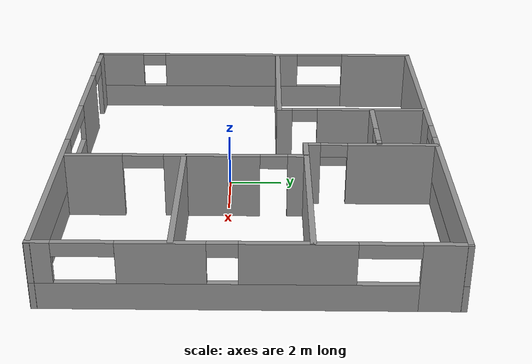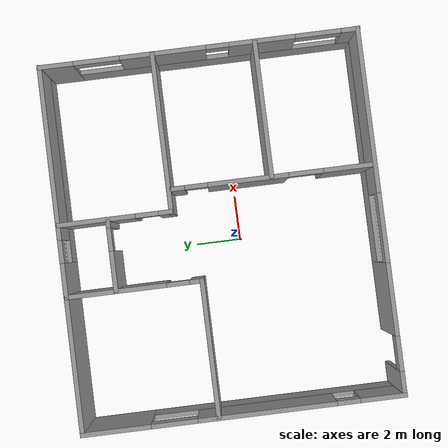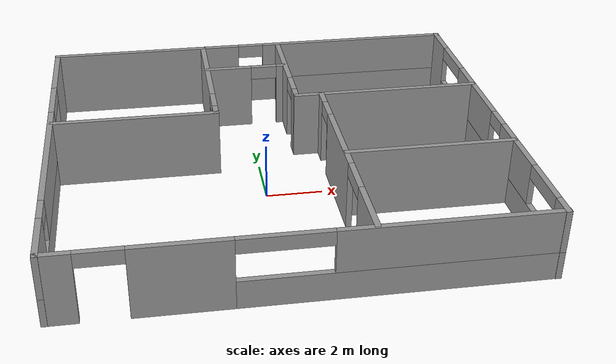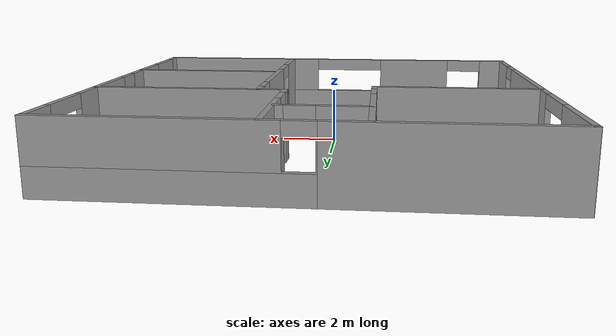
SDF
<?xml version='1.0'?>
<sdf version='1.4'>
  <model name='house_6'>
    <link name='Wall_0'>
      <pose>-1.5683 4.82163 0 0 0 -1.5708</pose>
      <visual name='Wall_0_Visual_0'>
        <pose>-0.80827 0 1.25 0 -0 0</pose>
        <geometry>
          <box>
            <size>4.38346 0.2 2.5</size>
          </box>
        </geometry>
        <material>
          <script>
            <uri>file://media/materials/scripts/gazebo.material</uri>
            <name>Gazebo/Grey</name>
          </script>
        </material>
      </visual>
      <collision name='Wall_0_Collision_0'>
        <geometry>
          <box>
            <size>4.38346 0.2 2.5</size>
          </box>
        </geometry>
        <pose>-0.80827 0 1.25 0 -0 0</pose>
      </collision>
      <visual name='Wall_0_Visual_1'>
        <pose>2.69173 0 1.25 0 -0 0</pose>
        <geometry>
          <box>
            <size>0.61654 0.2 2.5</size>
          </box>
        </geometry>
        <material>
          <script>
            <uri>file://media/materials/scripts/gazebo.material</uri>
            <name>Gazebo/Grey</name>
          </script>
        </material>
      </visual>
      <collision name='Wall_0_Collision_1'>
        <geometry>
          <box>
            <size>0.61654 0.2 2.5</size>
          </box>
        </geometry>
        <pose>2.69173 0 1.25 0 -0 0</pose>
      </collision>
      <visual name='Wall_0_Visual_2'>
        <pose>1.88346 0 2.25 0 -0 0</pose>
        <geometry>
          <box>
            <size>1 0.2 0.5</size>
          </box>
        </geometry>
        <material>
          <script>
            <uri>file://media/materials/scripts/gazebo.material</uri>
            <name>Gazebo/Grey</name>
          </script>
        </material>
      </visual>
      <collision name='Wall_0_Collision_2'>
        <geometry>
          <box>
            <size>1 0.2 0.5</size>
          </box>
        </geometry>
        <pose>1.88346 0 2.25 0 -0 0</pose>
      </collision>
    </link>
    <link name='Wall_10'>
      <pose>0.47408 -6.05021 0 0 -0 0</pose>
      <visual name='Wall_10_Visual_0'>
        <pose>-7.44687 0 1.25 0 -0 0</pose>
        <geometry>
          <box>
            <size>1.10625 0.2 2.5</size>
          </box>
        </geometry>
        <material>
          <script>
            <uri>file://media/materials/scripts/gazebo.material</uri>
            <name>Gazebo/Grey</name>
          </script>
        </material>
      </visual>
      <collision name='Wall_10_Collision_0'>
        <geometry>
          <box>
            <size>1.10625 0.2 2.5</size>
          </box>
        </geometry>
        <pose>-7.44687 0 1.25 0 -0 0</pose>
      </collision>
      <visual name='Wall_10_Visual_1'>
        <pose>-3.8207 0 1.25 0 -0 0</pose>
        <geometry>
          <box>
            <size>3.14608 0.2 2.5</size>
          </box>
        </geometry>
        <material>
          <script>
            <uri>file://media/materials/scripts/gazebo.material</uri>
            <name>Gazebo/Grey</name>
          </script>
        </material>
      </visual>
      <collision name='Wall_10_Collision_1'>
        <geometry>
          <box>
            <size>3.14608 0.2 2.5</size>
          </box>
        </geometry>
        <pose>-3.8207 0 1.25 0 -0 0</pose>
      </collision>
      <visual name='Wall_10_Visual_2'>
        <pose>2.87617 0 0.5 0 -0 0</pose>
        <geometry>
          <box>
            <size>10.2477 0.2 1</size>
          </box>
        </geometry>
        <material>
          <script>
            <uri>file://media/materials/scripts/gazebo.material</uri>
            <name>Gazebo/Grey</name>
          </script>
        </material>
      </visual>
      <collision name='Wall_10_Collision_2'>
        <geometry>
          <box>
            <size>10.2477 0.2 1</size>
          </box>
        </geometry>
        <pose>2.87617 0 0.5 0 -0 0</pose>
      </collision>
      <visual name='Wall_10_Visual_3'>
        <pose>4.37617 0 1.75 0 -0 0</pose>
        <geometry>
          <box>
            <size>7.24766 0.2 1.5</size>
          </box>
        </geometry>
        <material>
          <script>
            <uri>file://media/materials/scripts/gazebo.material</uri>
            <name>Gazebo/Grey</name>
          </script>
        </material>
      </visual>
      <collision name='Wall_10_Collision_3'>
        <geometry>
          <box>
            <size>7.24766 0.2 1.5</size>
          </box>
        </geometry>
        <pose>4.37617 0 1.75 0 -0 0</pose>
      </collision>
      <visual name='Wall_10_Visual_4'>
        <pose>-6.14375 0 2.25 0 -0 0</pose>
        <geometry>
          <box>
            <size>1.5 0.2 0.5</size>
          </box>
        </geometry>
        <material>
          <script>
            <uri>file://media/materials/scripts/gazebo.material</uri>
            <name>Gazebo/Grey</name>
          </script>
        </material>
      </visual>
      <collision name='Wall_10_Collision_4'>
        <geometry>
          <box>
            <size>1.5 0.2 0.5</size>
          </box>
        </geometry>
        <pose>-6.14375 0 2.25 0 -0 0</pose>
      </collision>
      <visual name='Wall_10_Visual_5'>
        <pose>-0.747664 0 2.25 0 -0 0</pose>
        <geometry>
          <box>
            <size>3 0.2 0.5</size>
          </box>
        </geometry>
        <material>
          <script>
            <uri>file://media/materials/scripts/gazebo.material</uri>
            <name>Gazebo/Grey</name>
          </script>
        </material>
      </visual>
      <collision name='Wall_10_Collision_5'>
        <geometry>
          <box>
            <size>3 0.2 0.5</size>
          </box>
        </geometry>
        <pose>-0.747664 0 2.25 0 -0 0</pose>
      </collision>
    </link>
    <link name='Wall_12'>
      <pose>0.474023 7.74505 0 0 -0 0</pose>
      <visual name='Wall_12_Visual_0'>
        <pose>-4.28683 0 1.25 0 -0 0</pose>
        <geometry>
          <box>
            <size>7.42633 0.2 2.5</size>
          </box>
        </geometry>
        <material>
          <script>
            <uri>file://media/materials/scripts/gazebo.material</uri>
            <name>Gazebo/Grey</name>
          </script>
        </material>
      </visual>
      <collision name='Wall_12_Collision_0'>
        <geometry>
          <box>
            <size>7.42633 0.2 2.5</size>
          </box>
        </geometry>
        <pose>-4.28683 0 1.25 0 -0 0</pose>
      </collision>
      <visual name='Wall_12_Visual_1'>
        <pose>3.71317 0 0.5 0 -0 0</pose>
        <geometry>
          <box>
            <size>8.57367 0.2 1</size>
          </box>
        </geometry>
        <material>
          <script>
            <uri>file://media/materials/scripts/gazebo.material</uri>
            <name>Gazebo/Grey</name>
          </script>
        </material>
      </visual>
      <collision name='Wall_12_Collision_1'>
        <geometry>
          <box>
            <size>8.57367 0.2 1</size>
          </box>
        </geometry>
        <pose>3.71317 0 0.5 0 -0 0</pose>
      </collision>
      <visual name='Wall_12_Visual_2'>
        <pose>4.21317 0 1.75 0 -0 0</pose>
        <geometry>
          <box>
            <size>7.57367 0.2 1.5</size>
          </box>
        </geometry>
        <material>
          <script>
            <uri>file://media/materials/scripts/gazebo.material</uri>
            <name>Gazebo/Grey</name>
          </script>
        </material>
      </visual>
      <collision name='Wall_12_Collision_2'>
        <geometry>
          <box>
            <size>7.57367 0.2 1.5</size>
          </box>
        </geometry>
        <pose>4.21317 0 1.75 0 -0 0</pose>
      </collision>
      <visual name='Wall_12_Visual_3'>
        <pose>-0.073665 0 2.25 0 -0 0</pose>
        <geometry>
          <box>
            <size>1 0.2 0.5</size>
          </box>
        </geometry>
        <material>
          <script>
            <uri>file://media/materials/scripts/gazebo.material</uri>
            <name>Gazebo/Grey</name>
          </script>
        </material>
      </visual>
      <collision name='Wall_12_Collision_3'>
        <geometry>
          <box>
            <size>1 0.2 0.5</size>
          </box>
        </geometry>
        <pose>-0.073665 0 2.25 0 -0 0</pose>
      </collision>
    </link>
    <link name='Wall_14'>
      <pose>-7.43878 0.843796 0 0 0 -1.5708</pose>
      <visual name='Wall_14_Visual_0'>
        <pose>-5.48158 0 1.25 0 -0 0</pose>
        <geometry>
          <box>
            <size>3.03684 0.2 2.5</size>
          </box>
        </geometry>
        <material>
          <script>
            <uri>file://media/materials/scripts/gazebo.material</uri>
            <name>Gazebo/Grey</name>
          </script>
        </material>
      </visual>
      <collision name='Wall_14_Collision_0'>
        <geometry>
          <box>
            <size>3.03684 0.2 2.5</size>
          </box>
        </geometry>
        <pose>-5.48158 0 1.25 0 -0 0</pose>
      </collision>
      <visual name='Wall_14_Visual_1'>
        <pose>1.51842 0 0.5 0 -0 0</pose>
        <geometry>
          <box>
            <size>10.9632 0.2 1</size>
          </box>
        </geometry>
        <material>
          <script>
            <uri>file://media/materials/scripts/gazebo.material</uri>
            <name>Gazebo/Grey</name>
          </script>
        </material>
      </visual>
      <collision name='Wall_14_Collision_1'>
        <geometry>
          <box>
            <size>10.9632 0.2 1</size>
          </box>
        </geometry>
        <pose>1.51842 0 0.5 0 -0 0</pose>
      </collision>
      <visual name='Wall_14_Visual_2'>
        <pose>1.01617 0 1.75 0 -0 0</pose>
        <geometry>
          <box>
            <size>5.95866 0.2 1.5</size>
          </box>
        </geometry>
        <material>
          <script>
            <uri>file://media/materials/scripts/gazebo.material</uri>
            <name>Gazebo/Grey</name>
          </script>
        </material>
      </visual>
      <collision name='Wall_14_Collision_2'>
        <geometry>
          <box>
            <size>5.95866 0.2 1.5</size>
          </box>
        </geometry>
        <pose>1.01617 0 1.75 0 -0 0</pose>
      </collision>
      <visual name='Wall_14_Visual_3'>
        <pose>5.99775 0 1.75 0 -0 0</pose>
        <geometry>
          <box>
            <size>2.0045 0.2 1.5</size>
          </box>
        </geometry>
        <material>
          <script>
            <uri>file://media/materials/scripts/gazebo.material</uri>
            <name>Gazebo/Grey</name>
          </script>
        </material>
      </visual>
      <collision name='Wall_14_Collision_3'>
        <geometry>
          <box>
            <size>2.0045 0.2 1.5</size>
          </box>
        </geometry>
        <pose>5.99775 0 1.75 0 -0 0</pose>
      </collision>
      <visual name='Wall_14_Visual_4'>
        <pose>-2.96316 0 2.25 0 -0 0</pose>
        <geometry>
          <box>
            <size>2 0.2 0.5</size>
          </box>
        </geometry>
        <material>
          <script>
            <uri>file://media/materials/scripts/gazebo.material</uri>
            <name>Gazebo/Grey</name>
          </script>
        </material>
      </visual>
      <collision name='Wall_14_Collision_4'>
        <geometry>
          <box>
            <size>2 0.2 0.5</size>
          </box>
        </geometry>
        <pose>-2.96316 0 2.25 0 -0 0</pose>
      </collision>
      <visual name='Wall_14_Visual_5'>
        <pose>4.4955 0 2.25 0 -0 0</pose>
        <geometry>
          <box>
            <size>1 0.2 0.5</size>
          </box>
        </geometry>
        <material>
          <script>
            <uri>file://media/materials/scripts/gazebo.material</uri>
            <name>Gazebo/Grey</name>
          </script>
        </material>
      </visual>
      <collision name='Wall_14_Collision_5'>
        <geometry>
          <box>
            <size>1 0.2 0.5</size>
          </box>
        </geometry>
        <pose>4.4955 0 2.25 0 -0 0</pose>
      </collision>
    </link>
    <link name='Wall_16'>
      <pose>8.36156 0.835605 0 0 0 -1.5708</pose>
      <visual name='Wall_16_Visual_0'>
        <pose>-6.2184 0 1.25 0 -0 0</pose>
        <geometry>
          <box>
            <size>1.5632 0.2 2.5</size>
          </box>
        </geometry>
        <material>
          <script>
            <uri>file://media/materials/scripts/gazebo.material</uri>
            <name>Gazebo/Grey</name>
          </script>
        </material>
      </visual>
      <collision name='Wall_16_Collision_0'>
        <geometry>
          <box>
            <size>1.5632 0.2 2.5</size>
          </box>
        </geometry>
        <pose>-6.2184 0 1.25 0 -0 0</pose>
      </collision>
      <visual name='Wall_16_Visual_1'>
        <pose>0.7816 0 0.5 0 -0 0</pose>
        <geometry>
          <box>
            <size>12.4368 0.2 1</size>
          </box>
        </geometry>
        <material>
          <script>
            <uri>file://media/materials/scripts/gazebo.material</uri>
            <name>Gazebo/Grey</name>
          </script>
        </material>
      </visual>
      <collision name='Wall_16_Collision_1'>
        <geometry>
          <box>
            <size>12.4368 0.2 1</size>
          </box>
        </geometry>
        <pose>0.7816 0 0.5 0 -0 0</pose>
      </collision>
      <visual name='Wall_16_Visual_2'>
        <pose>-1.56501 0 1.75 0 -0 0</pose>
        <geometry>
          <box>
            <size>3.74358 0.2 1.5</size>
          </box>
        </geometry>
        <material>
          <script>
            <uri>file://media/materials/scripts/gazebo.material</uri>
            <name>Gazebo/Grey</name>
          </script>
        </material>
      </visual>
      <collision name='Wall_16_Collision_2'>
        <geometry>
          <box>
            <size>3.74358 0.2 1.5</size>
          </box>
        </geometry>
        <pose>-1.56501 0 1.75 0 -0 0</pose>
      </collision>
      <visual name='Wall_16_Visual_3'>
        <pose>2.74162 0 1.75 0 -0 0</pose>
        <geometry>
          <box>
            <size>2.86968 0.2 1.5</size>
          </box>
        </geometry>
        <material>
          <script>
            <uri>file://media/materials/scripts/gazebo.material</uri>
            <name>Gazebo/Grey</name>
          </script>
        </material>
      </visual>
      <collision name='Wall_16_Collision_3'>
        <geometry>
          <box>
            <size>2.86968 0.2 1.5</size>
          </box>
        </geometry>
        <pose>2.74162 0 1.75 0 -0 0</pose>
      </collision>
      <visual name='Wall_16_Visual_4'>
        <pose>6.58823 0 1.75 0 -0 0</pose>
        <geometry>
          <box>
            <size>0.823535 0.2 1.5</size>
          </box>
        </geometry>
        <material>
          <script>
            <uri>file://media/materials/scripts/gazebo.material</uri>
            <name>Gazebo/Grey</name>
          </script>
        </material>
      </visual>
      <collision name='Wall_16_Collision_4'>
        <geometry>
          <box>
            <size>0.823535 0.2 1.5</size>
          </box>
        </geometry>
        <pose>6.58823 0 1.75 0 -0 0</pose>
      </collision>
      <visual name='Wall_16_Visual_5'>
        <pose>-4.4368 0 2.25 0 -0 0</pose>
        <geometry>
          <box>
            <size>2 0.2 0.5</size>
          </box>
        </geometry>
        <material>
          <script>
            <uri>file://media/materials/scripts/gazebo.material</uri>
            <name>Gazebo/Grey</name>
          </script>
        </material>
      </visual>
      <collision name='Wall_16_Collision_5'>
        <geometry>
          <box>
            <size>2 0.2 0.5</size>
          </box>
        </geometry>
        <pose>-4.4368 0 2.25 0 -0 0</pose>
      </collision>
      <visual name='Wall_16_Visual_6'>
        <pose>0.806782 0 2.25 0 -0 0</pose>
        <geometry>
          <box>
            <size>1 0.2 0.5</size>
          </box>
        </geometry>
        <material>
          <script>
            <uri>file://media/materials/scripts/gazebo.material</uri>
            <name>Gazebo/Grey</name>
          </script>
        </material>
      </visual>
      <collision name='Wall_16_Collision_6'>
        <geometry>
          <box>
            <size>1 0.2 0.5</size>
          </box>
        </geometry>
        <pose>0.806782 0 2.25 0 -0 0</pose>
      </collision>
      <visual name='Wall_16_Visual_7'>
        <pose>5.17647 0 2.25 0 -0 0</pose>
        <geometry>
          <box>
            <size>2 0.2 0.5</size>
          </box>
        </geometry>
        <material>
          <script>
            <uri>file://media/materials/scripts/gazebo.material</uri>
            <name>Gazebo/Grey</name>
          </script>
        </material>
      </visual>
      <collision name='Wall_16_Collision_7'>
        <geometry>
          <box>
            <size>2 0.2 0.5</size>
          </box>
        </geometry>
        <pose>5.17647 0 2.25 0 -0 0</pose>
      </collision>
    </link>
    <link name='Wall_18'>
      <collision name='Wall_18_Collision'>
        <geometry>
          <box>
            <size>6 0.2 2.5</size>
          </box>
        </geometry>
        <pose>0 0 1.25 0 -0 0</pose>
      </collision>
      <visual name='Wall_18_Visual'>
        <pose>0 0 1.25 0 -0 0</pose>
        <geometry>
          <box>
            <size>6 0.2 2.5</size>
          </box>
        </geometry>
        <material>
          <script>
            <uri>file://media/materials/scripts/gazebo.material</uri>
            <name>Gazebo/Grey</name>
          </script>
        </material>
      </visual>
      <velocity_decay>
        <linear>0</linear>
        <angular>0</angular>
      </velocity_decay>
      <pose>-4.46845 1.91522 0 0 -0 0</pose>
    </link>
    <link name='Wall_2'>
      <pose>2.47201 -1.5752 0 0 0 -1.5708</pose>
      <visual name='Wall_2_Visual_0'>
        <pose>-4.13056 0 1.25 0 -0 0</pose>
        <geometry>
          <box>
            <size>0.764127 0.2 2.5</size>
          </box>
        </geometry>
        <material>
          <script>
            <uri>file://media/materials/scripts/gazebo.material</uri>
            <name>Gazebo/Grey</name>
          </script>
        </material>
      </visual>
      <collision name='Wall_2_Collision_0'>
        <geometry>
          <box>
            <size>0.764127 0.2 2.5</size>
          </box>
        </geometry>
        <pose>-4.13056 0 1.25 0 -0 0</pose>
      </collision>
      <visual name='Wall_2_Visual_1'>
        <pose>-0.995273 0 1.25 0 -0 0</pose>
        <geometry>
          <box>
            <size>3.50644 0.2 2.5</size>
          </box>
        </geometry>
        <material>
          <script>
            <uri>file://media/materials/scripts/gazebo.material</uri>
            <name>Gazebo/Grey</name>
          </script>
        </material>
      </visual>
      <collision name='Wall_2_Collision_1'>
        <geometry>
          <box>
            <size>3.50644 0.2 2.5</size>
          </box>
        </geometry>
        <pose>-0.995273 0 1.25 0 -0 0</pose>
      </collision>
      <visual name='Wall_2_Visual_2'>
        <pose>3.38529 0 1.25 0 -0 0</pose>
        <geometry>
          <box>
            <size>2.25467 0.2 2.5</size>
          </box>
        </geometry>
        <material>
          <script>
            <uri>file://media/materials/scripts/gazebo.material</uri>
            <name>Gazebo/Grey</name>
          </script>
        </material>
      </visual>
      <collision name='Wall_2_Collision_2'>
        <geometry>
          <box>
            <size>2.25467 0.2 2.5</size>
          </box>
        </geometry>
        <pose>3.38529 0 1.25 0 -0 0</pose>
      </collision>
      <visual name='Wall_2_Visual_3'>
        <pose>-3.24849 0 2.25 0 -0 0</pose>
        <geometry>
          <box>
            <size>1 0.2 0.5</size>
          </box>
        </geometry>
        <material>
          <script>
            <uri>file://media/materials/scripts/gazebo.material</uri>
            <name>Gazebo/Grey</name>
          </script>
        </material>
      </visual>
      <collision name='Wall_2_Collision_3'>
        <geometry>
          <box>
            <size>1 0.2 0.5</size>
          </box>
        </geometry>
        <pose>-3.24849 0 2.25 0 -0 0</pose>
      </collision>
      <visual name='Wall_2_Visual_4'>
        <pose>1.50795 0 2.25 0 -0 0</pose>
        <geometry>
          <box>
            <size>1.5 0.2 0.5</size>
          </box>
        </geometry>
        <material>
          <script>
            <uri>file://media/materials/scripts/gazebo.material</uri>
            <name>Gazebo/Grey</name>
          </script>
        </material>
      </visual>
      <collision name='Wall_2_Collision_4'>
        <geometry>
          <box>
            <size>1.5 0.2 0.5</size>
          </box>
        </geometry>
        <pose>1.50795 0 2.25 0 -0 0</pose>
      </collision>
    </link>
    <link name='Wall_20'>
      <pose>-0.041819 5.60689 0 0 -0 0</pose>
      <visual name='Wall_20_Visual_0'>
        <pose>-0.686279 0 1.25 0 -0 0</pose>
        <geometry>
          <box>
            <size>1.77884 0.2 2.5</size>
          </box>
        </geometry>
        <material>
          <script>
            <uri>file://media/materials/scripts/gazebo.material</uri>
            <name>Gazebo/Grey</name>
          </script>
        </material>
      </visual>
      <collision name='Wall_20_Collision_0'>
        <geometry>
          <box>
            <size>1.77884 0.2 2.5</size>
          </box>
        </geometry>
        <pose>-0.686279 0 1.25 0 -0 0</pose>
      </collision>
      <visual name='Wall_20_Visual_1'>
        <pose>1.38942 0 1.25 0 -0 0</pose>
        <geometry>
          <box>
            <size>0.372558 0.2 2.5</size>
          </box>
        </geometry>
        <material>
          <script>
            <uri>file://media/materials/scripts/gazebo.material</uri>
            <name>Gazebo/Grey</name>
          </script>
        </material>
      </visual>
      <collision name='Wall_20_Collision_1'>
        <geometry>
          <box>
            <size>0.372558 0.2 2.5</size>
          </box>
        </geometry>
        <pose>1.38942 0 1.25 0 -0 0</pose>
      </collision>
      <visual name='Wall_20_Visual_2'>
        <pose>0.703141 0 2.25 0 -0 0</pose>
        <geometry>
          <box>
            <size>1 0.2 0.5</size>
          </box>
        </geometry>
        <material>
          <script>
            <uri>file://media/materials/scripts/gazebo.material</uri>
            <name>Gazebo/Grey</name>
          </script>
        </material>
      </visual>
      <collision name='Wall_20_Collision_2'>
        <geometry>
          <box>
            <size>1 0.2 0.5</size>
          </box>
        </geometry>
        <pose>0.703141 0 2.25 0 -0 0</pose>
      </collision>
    </link>
    <link name='Wall_4'>
      <pose>1.52578 5.29953 0 0 0 -1.5708</pose>
      <visual name='Wall_4_Visual_0'>
        <pose>-0.808951 0 1.25 0 -0 0</pose>
        <geometry>
          <box>
            <size>3.3821 0.2 2.5</size>
          </box>
        </geometry>
        <material>
          <script>
            <uri>file://media/materials/scripts/gazebo.material</uri>
            <name>Gazebo/Grey</name>
          </script>
        </material>
      </visual>
      <collision name='Wall_4_Collision_0'>
        <geometry>
          <box>
            <size>3.3821 0.2 2.5</size>
          </box>
        </geometry>
        <pose>-0.808951 0 1.25 0 -0 0</pose>
      </collision>
      <visual name='Wall_4_Visual_1'>
        <pose>2.19105 0 1.25 0 -0 0</pose>
        <geometry>
          <box>
            <size>0.617901 0.2 2.5</size>
          </box>
        </geometry>
        <material>
          <script>
            <uri>file://media/materials/scripts/gazebo.material</uri>
            <name>Gazebo/Grey</name>
          </script>
        </material>
      </visual>
      <collision name='Wall_4_Collision_1'>
        <geometry>
          <box>
            <size>0.617901 0.2 2.5</size>
          </box>
        </geometry>
        <pose>2.19105 0 1.25 0 -0 0</pose>
      </collision>
      <visual name='Wall_4_Visual_2'>
        <pose>1.3821 0 2.25 0 -0 0</pose>
        <geometry>
          <box>
            <size>1 0.2 0.5</size>
          </box>
        </geometry>
        <material>
          <script>
            <uri>file://media/materials/scripts/gazebo.material</uri>
            <name>Gazebo/Grey</name>
          </script>
        </material>
      </visual>
      <collision name='Wall_4_Collision_2'>
        <geometry>
          <box>
            <size>1 0.2 0.5</size>
          </box>
        </geometry>
        <pose>1.3821 0 2.25 0 -0 0</pose>
      </collision>
    </link>
    <link name='Wall_6'>
      <collision name='Wall_6_Collision'>
        <geometry>
          <box>
            <size>7 0.2 2.5</size>
          </box>
        </geometry>
        <pose>0 0 1.25 0 -0 0</pose>
      </collision>
      <visual name='Wall_6_Visual'>
        <pose>0 0 1.25 0 -0 0</pose>
        <geometry>
          <box>
            <size>7 0.2 2.5</size>
          </box>
        </geometry>
        <material>
          <script>
            <uri>file://media/materials/scripts/gazebo.material</uri>
            <name>Gazebo/Grey</name>
          </script>
        </material>
      </visual>
      <velocity_decay>
        <linear>0</linear>
        <angular>0</angular>
      </velocity_decay>
      <pose>4.92518 2.86294 0 0 -0 0</pose>
    </link>
    <link name='Wall_8'>
      <collision name='Wall_8_Collision'>
        <geometry>
          <box>
            <size>6 0.2 2.5</size>
          </box>
        </geometry>
        <pose>0 0 1.25 0 -0 0</pose>
      </collision>
      <visual name='Wall_8_Visual'>
        <pose>0 0 1.25 0 -0 0</pose>
        <geometry>
          <box>
            <size>6 0.2 2.5</size>
          </box>
        </geometry>
        <material>
          <script>
            <uri>file://media/materials/scripts/gazebo.material</uri>
            <name>Gazebo/Grey</name>
          </script>
        </material>
      </visual>
      <velocity_decay>
        <linear>0</linear>
        <angular>0</angular>
      </velocity_decay>
      <pose>5.40484 -1.58934 0 0 -0 0</pose>
    </link>
    <static>1</static>
  </model>
</sdf>
